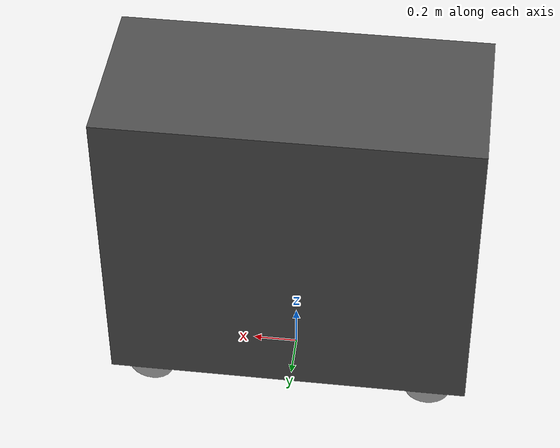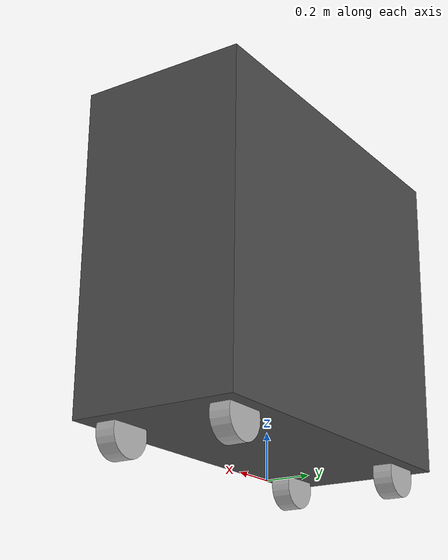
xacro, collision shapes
<?xml version="1.0" encoding="utf-8"?>

<robot name="megatrond" xmlns:xacro="http://www.ros.org/wiki/xacro">

  <!-- Begin - Include -->
  <xacro:include filename="$(find megatrond_description)/urdf/physics.xacro" />
  <xacro:include filename="$(find megatrond_description)/urdf/control_plugins.xacro" />
  <xacro:include filename="$(find megatrond_description)/urdf/kinect_plugin.xacro">
    <sensor_d435 parent="frnt_cam_lnk"></sensor_d435>
  </xacro:include>
  <!-- End - Include -->

  <link
  name="base_lnk">
  </link>

<!-- Chassis -->
  <link
    name="chassis_lnk">
    <inertial>
      <origin
        xyz="-0.000972685832883347 0 0.612414556322358"
        rpy="0 0 0"/>
      <mass
        value="330" />
      <inertia
        ixx="194.051784427"
        ixy="-0.000002355"
        ixz="-0.222021371"
        iyy="240.950271196"
        iyz="-0.000003455"
        izz="84.156564733" />
    </inertial>
    <visual>
      <origin
        xyz="0 0 0"
        rpy="0 0 1.570795" />
      <geometry>
        <mesh
          filename="package://megatrond_description/meshes/chassis_lnk.STL" />
      </geometry>
      <material name="darkgray">
        <color rgba="0.3 0.3 0.3 1.0"/>
      </material>
    </visual>
    <collision>
      <origin
        xyz="0 0 0.705"
        rpy="0 0 1.570795" />
      <geometry>
        <box size="1.6 0.740 1.410"/>
      </geometry>
    </collision>
  </link>
  <joint name="base_jnt" type="fixed">
     <origin
      xyz="0 0 0.1348"
      rpy="0 0 1.570795" />
     <parent link="base_lnk"/>
     <child link="chassis_lnk"/>
   </joint>

<!-- Front right wheel link -->
  <link
    name="flw_lnk">
    <inertial>
      <origin
        xyz="0 0.000207503444381474 0"
        rpy="0 0 0" />
      <mass
        value="2.344" />
      <inertia
        ixx="0.008294463"
        ixy="0.000000134"
        ixz="-0.000000111"
        iyy="0.013432708"
        iyz="-0.000000036"
        izz="0.00829408" />
    </inertial>
    <visual>
      <origin
        xyz="0 0 0"
        rpy="0 0 0" />
      <geometry>
        <mesh
          filename="package://megatrond_description/meshes/frw_lnk.STL" />
      </geometry>
      <material name="gray">
        <color rgba="0.7 0.7 0.7 1.0"/>
      </material>
    </visual>
    <collision>
      <origin
        xyz="0 0 0"
        rpy="1.57079632679 0 0" />
      <geometry>
        <cylinder radius="0.1015" length="0.089"/>
      </geometry>
    </collision>
  </link>

<!-- Front right wheel joint -->
  <joint
    name="flw_jnt"
    type="continuous">
    <origin
      xyz="-0.265 0.6305 -0.0333"
      rpy="0 0 1.570795" />
    <parent
      link="chassis_lnk" />
    <child
      link="flw_lnk" />
    <axis
      xyz="0 1 0" />
  </joint>

<!-- Front right wheel transmission -->
  <transmission name="frw_trans">
    <type>transmission_interface/SimpleTransmission</type>
    <joint name="frw_jnt">
      <hardwareInterface>hardware_interface/EffortJointInterface</hardwareInterface>
    </joint>
    <actuator name="frw_mtr">
      <hardwareInterface>hardware_interface/EffortJointInterface</hardwareInterface>
      <mechanicalReduction>1</mechanicalReduction>
    </actuator>
  </transmission>

<!-- Front left wheel link -->
  <link
    name="frw_lnk">
    <inertial>
      <origin
        xyz="0 0.000432578966736485 0"
        rpy="0 0 0" />
      <mass
        value="2.344" />
      <inertia
        ixx="0.008294463"
        ixy="0.000000134"
        ixz="-0.000000111"
        iyy="0.013432708"
        iyz="-0.000000036"
        izz="0.00829408"/>
    </inertial>
    <visual>
      <origin
        xyz="0 0 0"
        rpy="0 0 0" />
      <geometry>
        <mesh
          filename="package://megatrond_description/meshes/flw_lnk.STL" />
      </geometry>
      <material name="gray">
        <color rgba="0.7 0.7 0.7 1.0"/>
      </material>
    </visual>
    <collision>
      <origin
        xyz="0 0 0"
        rpy="1.57079632679 0 0" />
      <geometry>
        <cylinder radius="0.1015" length="0.089"/>
      </geometry>
    </collision>
  </link>

<!-- Front left wheel joint -->
  <joint
    name="frw_jnt"
    type="continuous">
    <origin
      xyz="0.265 0.6305 -0.0333"
      rpy="0 0 1.570795" />
    <parent
      link="chassis_lnk" />
    <child
      link="frw_lnk" />
    <axis
      xyz="0 1 0" />
  </joint>

<!-- Front left wheel transmission -->
  <transmission name="flw_trans">
    <type>transmission_interface/SimpleTransmission</type>
    <joint name="flw_jnt">
      <hardwareInterface>hardware_interface/EffortJointInterface</hardwareInterface>
    </joint>
    <actuator name="flw_mtr">
      <hardwareInterface>hardware_interface/EffortJointInterface</hardwareInterface>
      <mechanicalReduction>1</mechanicalReduction>
    </actuator>
  </transmission>

<!-- Rear right wheel link -->
  <link
    name="rlw_lnk">
    <inertial>
      <origin
        xyz="0 0.000432579291648749 0"
        rpy="0 0 0" />
      <mass
        value="2.344" />
      <inertia
        ixx="0.008294463"
        ixy="0.000000134"
        ixz="-0.000000111"
        iyy="0.013432708"
        iyz="-0.000000036"
        izz="0.00829408" />
    </inertial>
    <visual>
      <origin
        xyz="0 0 0"
        rpy="0 0 0" />
      <geometry>
        <mesh
          filename="package://megatrond_description/meshes/rrw_lnk.STL" />
      </geometry>
      <material name="gray">
        <color rgba="0.7 0.7 0.7 1.0"/>
      </material>
    </visual>
    <collision>
      <origin
        xyz="0 0 0"
        rpy="1.57079632679 0 0" />
      <geometry>
        <cylinder radius="0.1015" length="0.089"/>
      </geometry>
    </collision>
  </link>

<!-- Rear right wheel joint -->
  <joint
    name="rlw_jnt"
    type="continuous">
    <origin
      xyz="-0.265 -0.6305 -0.0333"
      rpy="0 0 1.570795" />
    <parent
      link="chassis_lnk" />
    <child
      link="rlw_lnk" />
    <axis
      xyz="0 1 0" />
  </joint>

<!-- Rear right wheel transmission -->
  <transmission name="rrw_trans">
    <type>transmission_interface/SimpleTransmission</type>
    <joint name="rrw_jnt">
      <hardwareInterface>hardware_interface/EffortJointInterface</hardwareInterface>
    </joint>
    <actuator name="rrw_mtr">
      <hardwareInterface>hardware_interface/EffortJointInterface</hardwareInterface>
      <mechanicalReduction>1</mechanicalReduction>
    </actuator>
  </transmission>

<!-- Rear left wheel link -->
  <link
    name="rrw_lnk">
    <inertial>
      <origin
        xyz="0 0.000207503203965842 0"
        rpy="0 0 0" />
      <mass
        value="2.344" />
      <inertia
        ixx="0.008294463"
        ixy="0.000000134"
        ixz="-0.000000111"
        iyy="0.013432708"
        iyz="-0.000000036"
        izz="0.00829408" />
    </inertial>
    <visual>
      <origin
        xyz="0 0 0"
        rpy="0 0 0" />
      <geometry>
        <mesh
          filename="package://megatrond_description/meshes/rlw_lnk.STL" />
      </geometry>
      <material name="gray">
        <color rgba="0.7 0.7 0.7 1.0"/>
      </material>
    </visual>
    <collision>
      <origin
        xyz="0 0 0"
        rpy="1.57079632679 0 0" />
      <geometry>
        <cylinder radius="0.1015" length="0.089"/>
      </geometry>
    </collision>
  </link>

<!-- Rear left wheel joint -->
  <joint
    name="rrw_jnt"
    type="continuous">
    <origin
      xyz="0.265 -0.6305 -0.0333"
      rpy="0 0 1.570795" />
    <parent
      link="chassis_lnk" />
    <child
      link="rrw_lnk" />
    <axis
      xyz="0 1 0" />
  </joint>

<!-- Rear left wheel transmission -->
  <transmission name="rlw_trans">
    <type>transmission_interface/SimpleTransmission</type>
    <joint name="rlw_jnt">
      <hardwareInterface>hardware_interface/EffortJointInterface</hardwareInterface>
    </joint>
    <actuator name="rlw_mtr">
      <hardwareInterface>hardware_interface/EffortJointInterface</hardwareInterface>
      <mechanicalReduction>1</mechanicalReduction>
    </actuator>
  </transmission>

<!-- Front camera link -->
  <link
    name="frnt_cam_lnk">
    <inertial>
      <origin
        xyz="-0.0131722832618059 -0.00168229592489122 0"
        rpy="0 0 0" />
      <mass
        value="0.03819" />
      <inertia
        ixx="0.000010394"
        ixy="-0.000000013"
        ixz="-0.000001013"
        iyy="0.000031694"
        iyz="-0.000000014"
        izz="0.000024794" />
    </inertial>
    <visual>
      <origin
        xyz="-0.1253 -0.0515 -0.0195"
        rpy="1.57 0 1.57" />
      <geometry>
        <mesh
          filename="package://megatrond_description/meshes/azure_kinect.STL" />
      </geometry>
      <material name="red">
        <color rgba="0.8 0.0 0.0 1.0"/>
      </material>
    </visual>
    <collision>
      <origin
        xyz="-0.0125 0 0"
        rpy="0 0 0" />
      <geometry>
        <box size="0.025 0.089 0.026"/>
      </geometry>
    </collision>
  </link>
  <joint
    name="frnt_cam_jnt"
    type="fixed">
    <origin
      xyz="0 0.71629 0.205"
      rpy="0 0 1.570795" />
    <parent
      link="chassis_lnk" />
    <child
      link="frnt_cam_lnk" />
    <axis
      xyz="0 0 0" />
  </joint>

<!-- Optical frame of front camera -->
  <link name="frnt_cam_opt">
  </link>

  <joint name="frnt_cam_opt_jnt" type="fixed">
    <origin xyz="-0 0 0" rpy="-1.57079632 0 -1.57079632"/>
    <parent link="frnt_cam_lnk"/>
    <child link="frnt_cam_opt"/>
  </joint>

<!-- Pointcloud to laserscan frame for front camera -->
  <link name="frnt_cam_p2l">
  </link>

  <joint name="frnt_cam_p2l_jnt" type="fixed">
    <origin xyz="-0 0 0" rpy="1.57079632 0 0"/>
    <parent link="frnt_cam_opt"/>
    <child link="frnt_cam_p2l"/>
  </joint>

<!-- Rear camera link -->
  <link
    name="rear_cam_lnk">
    <inertial>
      <origin
        xyz="-0.0131722843354336 -0.00168229191375158 0"
        rpy="0 0 0" />
      <mass
        value="0.03819" />
      <inertia
        ixx="0.000010394"
        ixy="-0.000000013"
        ixz="-0.000001013"
        iyy="0.000031694"
        iyz="-0.000000014"
        izz="0.000024794" />
    </inertial>
    <visual>
      <origin
        xyz="-0.1253 -0.0515 -0.0195"
        rpy="1.57 0 1.57" />
      <geometry>
        <mesh
          filename="package://megatrond_description/meshes/azure_kinect.STL" />
      </geometry>
      <material name="red">
        <color rgba="0.8 0.0 0.0 1.0"/>
      </material>
    </visual>
    <collision>
      <origin
        xyz="-0.0125 0 0"
        rpy="0 0 0" />
      <geometry>
        <box size="0.025 0.089 0.026"/>
      </geometry>
    </collision>
  </link>
  <joint
    name="rear_cam_jnt"
    type="fixed">
    <origin
      xyz="0 -0.71629 0.205"
      rpy="0 0 -1.570795" />
    <parent
      link="chassis_lnk" />
    <child
      link="rear_cam_lnk" />
    <axis
      xyz="0 0 0" />
  </joint>

<!-- Optical frame of rear camera -->
  <link name="rear_cam_opt">
  </link>

  <joint name="rear_cam_opt_jnt" type="fixed">
    <origin xyz="0 0 0" rpy="-1.57079632 0 -1.57079632"/>
    <parent link="rear_cam_lnk"/>
    <child link="rear_cam_opt"/>
  </joint>

<!-- Pointcloud to laserscan frame for front camera -->
  <link name="rear_cam_p2l">
  </link>

  <joint name="rear_cam_p2l_jnt" type="fixed">
    <origin xyz="-0 0 0" rpy="1.57079632 0 0"/>
    <parent link="rear_cam_opt"/>
    <child link="rear_cam_p2l"/>
  </joint>

<!-- Left camera link -->
  <link
    name="left_cam_lnk">
    <inertial>
      <origin
        xyz="-0.0131722833510124 -0.00168229558316457 0"
        rpy="0 0 0" />
      <mass
        value="0.0381911728516357" />
      <inertia
        ixx="0.000010394"
        ixy="-0.000000013"
        ixz="-0.000001013"
        iyy="0.000031694"
        iyz="-0.000000014"
        izz="0.000024794" />
    </inertial>
    <visual>
      <origin
        xyz="-0.1253 -0.0515 -0.0195"
        rpy="1.57 0 1.57" />
      <geometry>
        <mesh
          filename="package://megatrond_description/meshes/azure_kinect.STL" />
      </geometry>
      <material name="red">
        <color rgba="0.8 0.0 0.0 1.0"/>
      </material>
    </visual>
    <collision>
      <origin
        xyz="-0.0125 0 0"
        rpy="0 0 0" />
      <geometry>
        <box size="0.025 0.089 0.026"/>
      </geometry>
    </collision>
  </link>
  <joint
    name="left_cam_jnt"
    type="fixed">
    <origin
      xyz="-0.290 0 0.205"
      rpy="0 0 3.14159" />
    <parent
      link="chassis_lnk" />
    <child
      link="left_cam_lnk" />
    <axis
      xyz="0 0 0" />
  </joint>

<!-- Optical frame of left camera -->
  <link name="left_cam_opt">
  </link>

  <joint name="left_cam_opt_jnt" type="fixed">
    <origin xyz="0 0 0" rpy="-1.57079632 0 -1.57079632"/>
    <parent link="left_cam_lnk"/>
    <child link="left_cam_opt"/>
  </joint>

<!-- Pointcloud to laserscan frame for front camera -->
  <link name="left_cam_p2l">
  </link>

  <joint name="left_cam_p2l_jnt" type="fixed">
    <origin xyz="-0 0 0" rpy="1.57079632 0 0"/>
    <parent link="left_cam_opt"/>
    <child link="left_cam_p2l"/>
  </joint>

<!-- Right camera link -->
  <link
    name="right_cam_lnk">
    <inertial>
      <origin
        xyz="-0.0131722832618305 -0.00168229592492075 0"
        rpy="0 0 0" />
      <mass
        value="0.03819" />
      <inertia
        ixx="0.000010394"
        ixy="-0.000000013"
        ixz="-0.000001013"
        iyy="0.000031694"
        iyz="-0.000000014"
        izz="0.000024794" />
    </inertial>
    <visual>
      <origin
        xyz="-0.1253 -0.0515 -0.0195"
        rpy="1.57 0 1.57" />
      <geometry>
        <mesh
          filename="package://megatrond_description/meshes/azure_kinect.STL" />
      </geometry>
      <material name="red">
        <color rgba="0.8 0.0 0.0 1.0"/>
      </material>
    </visual>
    <collision>
      <origin
        xyz="-0.0125 0 0"
        rpy="0 0 0" />
      <geometry>
        <box size="0.025 0.089 0.026"/>
      </geometry>
    </collision>
  </link>
  <joint
    name="right_cam_jnt"
    type="fixed">
    <origin
      xyz="0.290 0 0.205"
      rpy="0 0 0" />
    <parent
      link="chassis_lnk" />
    <child
      link="right_cam_lnk" />
    <axis
      xyz="0 0 0" />
  </joint>

<!-- Optical frame of right camera -->
  <link name="right_cam_opt">
  </link>

  <joint name="right_cam_opt_jnt" type="fixed">
    <origin xyz="0 0 0" rpy="-1.57079632 0 -1.57079632"/>
    <parent link="right_cam_lnk"/>
    <child link="right_cam_opt"/>
  </joint>

<!-- Pointcloud to laserscan frame for front camera -->
  <link name="right_cam_p2l">
  </link>

  <joint name="right_cam_p2l_jnt" type="fixed">
    <origin xyz="-0 0 0" rpy="1.57079632 0 0"/>
    <parent link="right_cam_opt"/>
    <child link="right_cam_p2l"/>
  </joint>

<!-- Merged laserscan frame -->
  <link name="laser_lnk">
  </link>

  <joint name="laser_jnt" type="fixed">
    <origin xyz="0 0 0.2" rpy="0 0 0"/>
    <parent link="chassis_lnk"/>
    <child link="laser_lnk"/>
  </joint>

</robot>
